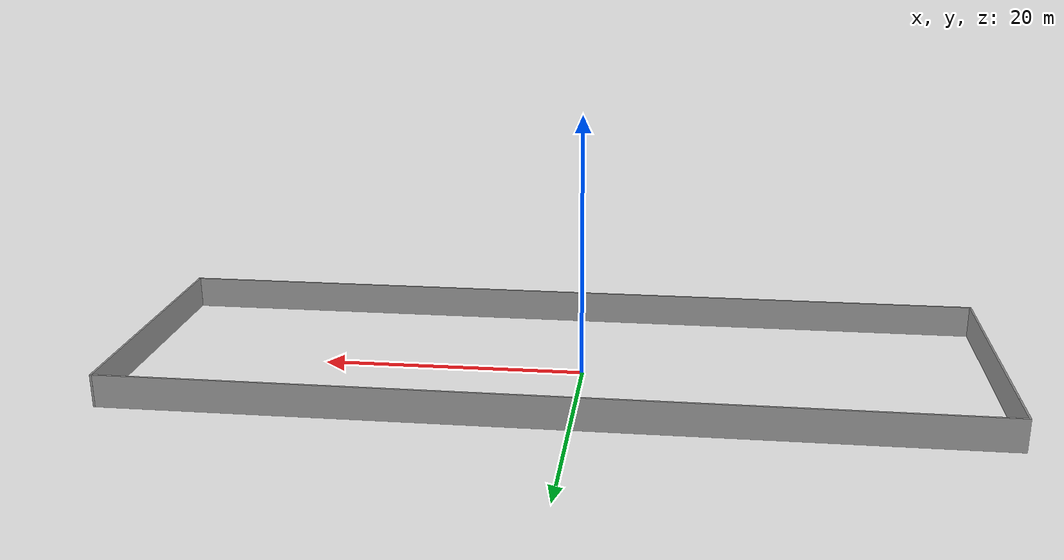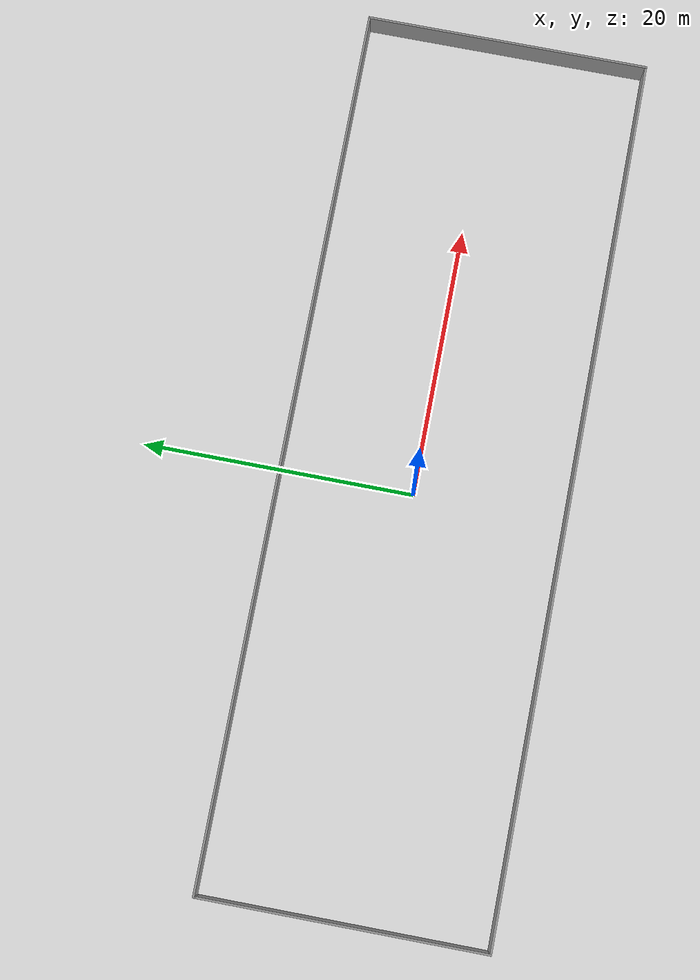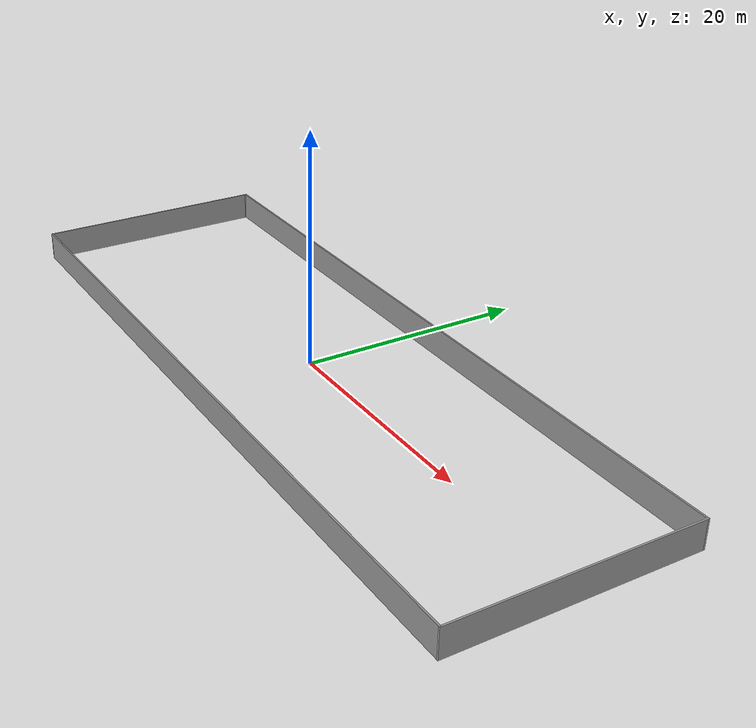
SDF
<?xml version='1.0'?>
<sdf version='1.7'>
  <model name='fence1'>
    <pose>1.82913 -0.660377 0 0 -0 0</pose>
    <link name='Wall_2'>
      <collision name='Wall_2_Collision'>
        <geometry>
          <box>
            <size>20.75 0.15 2.5</size>
          </box>
        </geometry>
        <pose>0 0 1.25 0 -0 0</pose>
      </collision>
      <visual name='Wall_2_Visual'>
        <pose>0 0 1.25 0 -0 0</pose>
        <geometry>
          <box>
            <size>20.75 0.15 2.5</size>
          </box>
        </geometry>
        <material>
          <script>
            <uri>file://media/materials/scripts/gazebo.material</uri>
            <name>Gazebo/Grey</name>
          </script>
          <ambient>0 0 0 1</ambient>
        </material>
        <meta>
          <layer>0</layer>
        </meta>
      </visual>
      <pose>-32.55 -0.125 0 0 -0 -1.5708</pose>
    </link>
    <link name='Wall_3'>
      <collision name='Wall_3_Collision'>
        <geometry>
          <box>
            <size>65.25 0.15 2.5</size>
          </box>
        </geometry>
        <pose>0 0 1.25 0 -0 0</pose>
      </collision>
      <visual name='Wall_3_Visual'>
        <pose>0 0 1.25 0 -0 0</pose>
        <geometry>
          <box>
            <size>65.25 0.15 2.5</size>
          </box>
        </geometry>
        <material>
          <script>
            <uri>file://media/materials/scripts/gazebo.material</uri>
            <name>Gazebo/Grey</name>
          </script>
          <ambient>0 0 0 1</ambient>
        </material>
        <meta>
          <layer>0</layer>
        </meta>
      </visual>
      <pose>-0 -10.425 0 0 -0 0</pose>
    </link>
    <link name='Wall_4'>
      <collision name='Wall_4_Collision'>
        <geometry>
          <box>
            <size>21 0.15 2.5</size>
          </box>
        </geometry>
        <pose>0 0 1.25 0 -0 0</pose>
      </collision>
      <visual name='Wall_4_Visual'>
        <pose>0 0 1.25 0 -0 0</pose>
        <geometry>
          <box>
            <size>21 0.15 2.5</size>
          </box>
        </geometry>
        <material>
          <script>
            <uri>file://media/materials/scripts/gazebo.material</uri>
            <name>Gazebo/Grey</name>
          </script>
          <ambient>0 0 0 1</ambient>
        </material>
        <meta>
          <layer>0</layer>
        </meta>
      </visual>
      <pose>32.55 0 0 0 -0 1.5708</pose>
    </link>
    <link name='Wall_5'>
      <collision name='Wall_5_Collision'>
        <geometry>
          <box>
            <size>65.25 0.15 2.5</size>
          </box>
        </geometry>
        <pose>0 0 1.25 0 -0 0</pose>
      </collision>
      <visual name='Wall_5_Visual'>
        <pose>0 0 1.25 0 -0 0</pose>
        <geometry>
          <box>
            <size>65.25 0.15 2.5</size>
          </box>
        </geometry>
        <material>
          <script>
            <uri>file://media/materials/scripts/gazebo.material</uri>
            <name>Gazebo/Grey</name>
          </script>
          <ambient>0 0 0 1</ambient>
        </material>
        <meta>
          <layer>0</layer>
        </meta>
      </visual>
      <pose>-0 10.425 0 0 -0 3.14159</pose>
    </link>
    <link name='Wall_6'>
      <collision name='Wall_6_Collision'>
        <geometry>
          <box>
            <size>3.25 0.15 2.5</size>
          </box>
        </geometry>
        <pose>0 0 1.25 0 -0 0</pose>
      </collision>
      <visual name='Wall_6_Visual'>
        <pose>0 0 1.25 0 -0 0</pose>
        <geometry>
          <box>
            <size>3.25 0.15 2.5</size>
          </box>
        </geometry>
        <material>
          <script>
            <uri>file://media/materials/scripts/gazebo.material</uri>
            <name>Gazebo/Grey</name>
          </script>
          <ambient>0 0 0 1</ambient>
        </material>
        <meta>
          <layer>0</layer>
        </meta>
      </visual>
      <pose>-32.55 8.875 0 0 -0 -1.5708</pose>
    </link>
    <static>1</static>
  </model>
</sdf>
